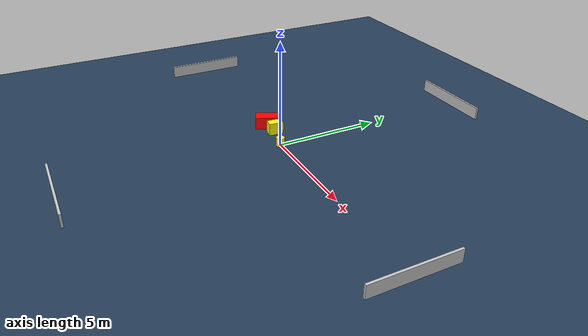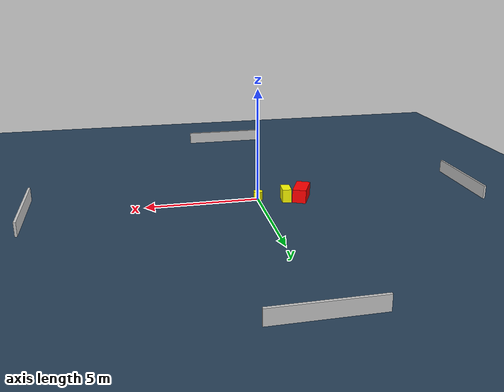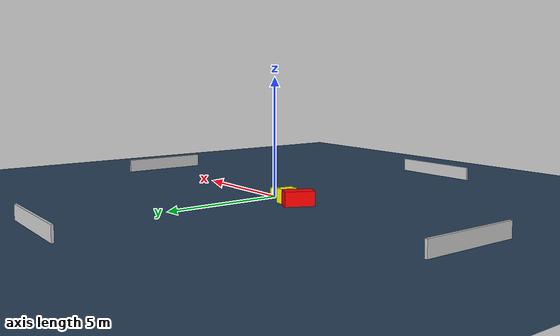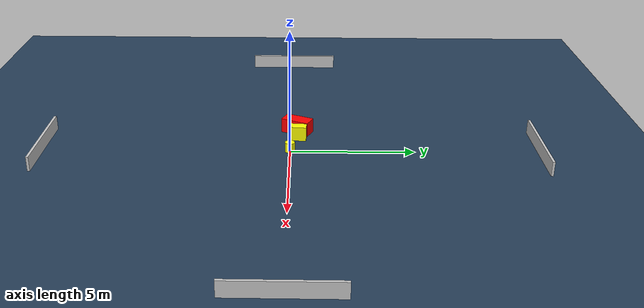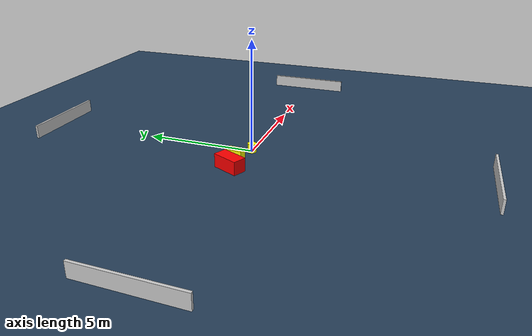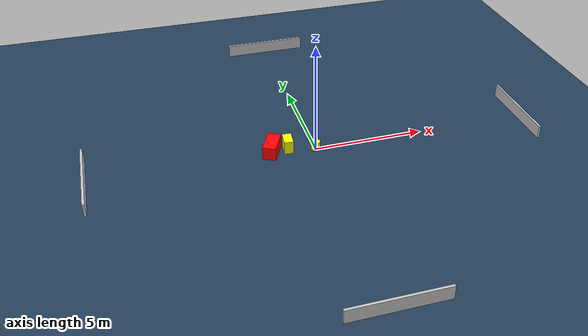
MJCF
<?xml version="1.0" ?>
<mujoco model="generated_environment">
  <option timestep="0.01" integrator="RK4" cone="elliptic"/>
  <default>
    <geom density="1"/>
  </default>
  <asset>
    <texture builtin="gradient" height="3072" name="skybox" rgb1="0.3 0.5 0.7" rgb2="0 0 0" type="skybox" width="512"/>
    <texture builtin="checker" height="300" name="groundplane" rgb1="0.2 0.3 0.4" rgb2="0.1 0.2 0.3" type="2d" width="300"/>
    <material name="groundplane" reflectance="0.2" texrepeat="5 5" texture="groundplane"/>
  </asset>
  <worldbody>
    <light dir="0 0 -1" directional="true" pos="0 0 1.5"/>
    <geom condim="3" friction="0.5 0.005 0.001" material="groundplane" name="floor" pos="0 0 0" size="0 0 0.05" type="plane"/>
    <body name="walls">
      <geom name="wall_1" condim="4" pos="-10.0 0.0 0.3" rgba="0.800000011920929 0.800000011920929 0.800000011920929 1.0" size="0.05 2.0 0.3" type="box"/>
      <geom name="wall_2" condim="4" pos="10.0 0.0 0.3" rgba="0.800000011920929 0.800000011920929 0.800000011920929 1.0" size="0.05 2.0 0.3" type="box"/>
      <geom name="wall_3" condim="4" pos="0.0 -10.0 0.3" rgba="0.800000011920929 0.800000011920929 0.800000011920929 1.0" size="2.0 0.05 0.3" type="box"/>
      <geom name="wall_4" condim="4" pos="0.0 10.0 0.3" rgba="0.800000011920929 0.800000011920929 0.800000011920929 1.0" size="2.0 0.05 0.3" type="box"/>
    </body>
    <body name="robot">
      <joint name="joint_x" type="slide" pos="0 0 0" axis="1 0 0"/>
      <joint name="joint_y" type="slide" pos="0 0 0" axis="0 1 0"/>
      <geom name="robot" type="cylinder" pos="0.0 0.0 0.2" size="0.2 0.2 0.0" mass="5.0" friction="1.0 0.005 0.0001" condim="4" rgba="1.0 1.0 0.0 1.0"/>
    </body>
    <body name="obstacle_1_movable">
      <geom name="obstacle_1_movable" condim="4" pos="-1.201797487389522 0.3099071307555677 0.3" euler="0 0 174.87290088408878" friction="0.0 0.005 0.001" rgba="1.0 1.0 0.0 1.0" size="0.20448159662512802 0.34851984307848205 0.3" type="box" mass="0.1"/>
      <joint type="free"/>
    </body>
    <body name="obstacle_2_static">
      <geom name="obstacle_2_static" condim="4" pos="-1.931046125711209 0.2724152340483868 0.3" euler="0 0 64.87391117085046" friction="0.0 0.005 0.001" rgba="1.0 0.0 0.0 1.0" size="0.6013999252351027 0.30190508866538385 0.3" type="box"/>
    </body>
  </worldbody>
  <actuator>
    <motor name="actuator_x" joint="joint_x" gear="1" ctrlrange="-1 1"/>
    <motor name="actuator_y" joint="joint_y" gear="1" ctrlrange="-1 1"/>
  </actuator>
</mujoco>
